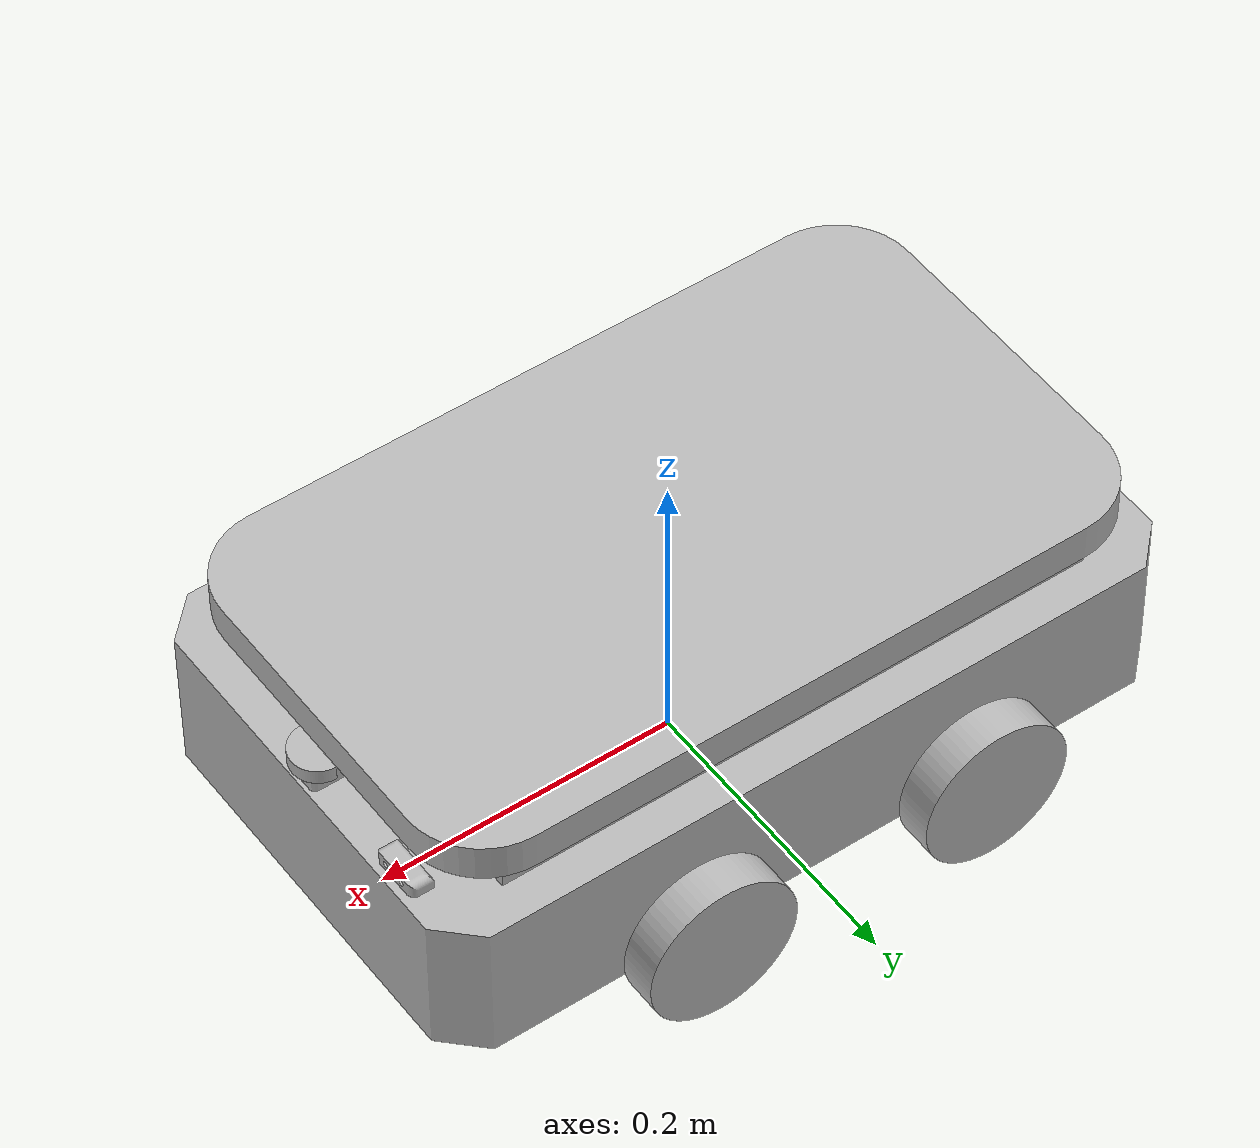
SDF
<?xml version="1.0" ?>
<sdf version="1.9">
<world name="default">
        <physics name="1ms" type="ignored">
            <max_step_size>0.001</max_step_size>
            <real_time_factor>1.0</real_time_factor>
        </physics>
        <plugin
            filename="gz-sim-physics-system"
            name="gz::sim::systems::Physics">
        </plugin>
        <plugin
            filename="gz-sim-user-commands-system"
            name="gz::sim::systems::UserCommands">
        </plugin>
        <plugin
            filename="gz-sim-scene-broadcaster-system"
            name="gz::sim::systems::SceneBroadcaster">
        </plugin>
        <plugin filename="gz-sim-imu-system"
              name="gz::sim::systems::Imu">
        </plugin>

        <plugin
          filename="gz-sim-sensors-system"
          name="gz::sim::systems::Sensors">
          <render_engine>ogre2</render_engine>
        </plugin>

        <light type="directional" name="sun">
            <cast_shadows>true</cast_shadows>
            <pose>0 0 10 0 0 0</pose>
            <diffuse>0.8 0.8 0.8 1</diffuse>
            <specular>0.2 0.2 0.2 1</specular>
            <attenuation>
                <range>1000</range>
                <constant>0.9</constant>
                <linear>0.01</linear>
                <quadratic>0.001</quadratic>
            </attenuation>
            <direction>-0.5 0.1 -0.9</direction>
        </light>

  <model name="rusty_v1">
    <link name="base_link">
      <inertial>
        <mass>0.0001</mass>
        <inertia>
          <ixx>1e-09</ixx>
          <ixy>0</ixy>
          <ixz>0</ixz>
          <iyy>1e-09</iyy>
          <iyz>0</iyz>
          <izz>1e-09</izz>
        </inertia>
      </inertial>
      <sensor name="imu_sensor" type="imu">
        <always_on>1</always_on>
        <update_rate>1</update_rate>
        <visualize>true</visualize>
        <topic>imu</topic>
      </sensor>
    </link>
    <link name="base_link_1">
      <pose relative_to="__model__">0.0 0.0 0.025 0.0 -0.0 0.0</pose>
      <inertial>
        <pose>0.0002544970294304579 -2.7411733823236023e-17 0.05841254857000653 0.0 -0.0 0.0</pose>
        <mass>14.333340375312384</mass>
        <inertia>
          <ixx>0.17330689589626652</ixx>
          <ixy>3.770856504009189e-16</ixy>
          <ixz>-0.00017122611970999112</ixz>
          <iyy>0.37322862931138256</iyy>
          <iyz>8.481746606555297e-18</iyz>
          <izz>0.49091749554724184</izz>
        </inertia>
      </inertial>
      <visual name="base_link_1__base_link_visual">
        <geometry>
          <mesh>
            <scale>0.01 0.01 0.01</scale>
            <uri>/home/siddarth/ros2ws/src/Rusty/rusty_common/meshes/base_link_1/base_link_visual.obj</uri>
          </mesh>
        </geometry>
      </visual>
      <collision name="base_link_1__base_link_collision">
        <pose relative_to="__model__">0.0 0.0 0.0875 -0.0 -1.5707963267948966 0</pose>
        <geometry>
          <box>
            <size>0.125 0.34 0.5</size>
          </box>
        </geometry>
      </collision>
    </link>
    <link name="rw1_1">
      <pose relative_to="__model__">-0.048075934676033716 0.16599272944775692 0.035152659990737724 6.938893903907236e-18 -0.0 0.0</pose>
      <inertial>
        <pose>0.1430759346760337 -0.3384927294477569 0.014847340009262286 -6.938893903907236e-18 -0.0 0.0</pose>
        <mass>0.1826050729899068</mass>
        <inertia>
          <ixx>0.00012363885150358436</ixx>
          <ixy>-8.673617379884035e-19</ixy>
          <ixz>-2.168404344971009e-19</ixz>
          <iyy>0.00022825634123738127</iyy>
          <iyz>6.505213034913027e-19</iyz>
          <izz>0.00012363885150358522</izz>
        </inertia>
      </inertial>
      <visual name="rw1_1__rw1_visual">
        <geometry>
          <mesh>
            <scale>0.01 0.01 0.01</scale>
            <uri>/home/siddarth/ros2ws/src/Rusty/rusty_common/meshes/rw1_1/rw1_visual.obj</uri>
          </mesh>
        </geometry>
      </visual>
      <collision name="rw1_1__rw1_collision">
        <pose relative_to="__model__">0.095 -0.1725 0.05 -0.0 -1.5707963267948966 0</pose>
        <geometry>
          <box>
            <size>0.10000000000000003 0.025 0.10000000000000002</size>
          </box>
        </geometry>
      </collision>
    </link>
    <link name="lw1_1">
      <pose relative_to="__model__">-0.0029629661386292127 -0.06704285733682042 0.04257306317273629 0.0 -0.0 0.0</pose>
      <inertial>
        <pose>0.09796296613862925 0.23954285733682046 0.007426936827263732 0.0 -0.0 0.0</pose>
        <mass>0.1826050729899069</mass>
        <inertia>
          <ixx>0.00012363885150357915</ixx>
          <ixy>8.673617379884035e-19</ixy>
          <ixz>2.927345865710862e-18</ixz>
          <iyy>0.00022825634123738083</iyy>
          <iyz>2.168404344971009e-19</iyz>
          <izz>0.00012363885150358002</izz>
        </inertia>
      </inertial>
      <visual name="lw1_1__lw1_visual">
        <geometry>
          <mesh>
            <scale>0.01 0.01 0.01</scale>
            <uri>/home/siddarth/ros2ws/src/Rusty/rusty_common/meshes/lw1_1/lw1_visual.obj</uri>
          </mesh>
        </geometry>
      </visual>
      <collision name="lw1_1__lw1_collision">
        <pose relative_to="__model__">0.095 0.1725 0.05000000000000001 -0.0 -1.5707963267948966 0</pose>
        <geometry>
          <box>
            <size>0.10000000000000005 0.025 0.10000000000000003</size>
          </box>
        </geometry>
      </collision>
    </link>
    <link name="rw2_1">
      <pose relative_to="__model__">0.05430130702462311 0.165 0.0004577485078454657 0.0 -0.0 0.0</pose>
      <inertial>
        <pose>-0.1493013070246231 -0.3375 0.049542251492154535 0.0 -0.0 0.0</pose>
        <mass>0.18260507298990683</mass>
        <inertia>
          <ixx>0.00012363885150357828</ixx>
          <ixy>-3.903127820947816e-18</ixy>
          <ixz>3.2526065174565133e-19</ixz>
          <iyy>0.00022825634123738083</iyy>
          <iyz>2.168404344971009e-19</iyz>
          <izz>0.00012363885150358436</izz>
        </inertia>
      </inertial>
      <visual name="rw2_1__rw2_visual">
        <geometry>
          <mesh>
            <scale>0.01 0.01 0.01</scale>
            <uri>/home/siddarth/ros2ws/src/Rusty/rusty_common/meshes/rw2_1/rw2_visual.obj</uri>
          </mesh>
        </geometry>
      </visual>
      <collision name="rw2_1__rw2_collision">
        <pose relative_to="__model__">-0.095 -0.1725 0.05 -0.0 -1.5707963267948966 0</pose>
        <geometry>
          <box>
            <size>0.10000000000000003 0.025 0.10000000000000005</size>
          </box>
        </geometry>
      </collision>
    </link>
    <link name="lw2_1">
      <pose relative_to="__model__">0.06544107043140138 -0.18624680235844282 -0.0338269179372204 2.7755575615628914e-17 -0.0 0.0</pose>
      <inertial>
        <pose>-0.16044107043140138 0.35874680235844275 0.08382691793722039 -2.7755575615628914e-17 -0.0 0.0</pose>
        <mass>0.18260507298990683</mass>
        <inertia>
          <ixx>0.00012363885150358956</ixx>
          <ixy>1.3010426069826053e-18</ixy>
          <ixz>-3.2526065174565133e-19</ixz>
          <iyy>0.00022825634123737823</iyy>
          <iyz>-6.505213034913027e-19</iyz>
          <izz>0.00012363885150358696</izz>
        </inertia>
      </inertial>
      <visual name="lw2_1__lw2_visual">
        <geometry>
          <mesh>
            <scale>0.01 0.01 0.01</scale>
            <uri>/home/siddarth/ros2ws/src/Rusty/rusty_common/meshes/lw2_1/lw2_visual.obj</uri>
          </mesh>
        </geometry>
      </visual>
      <collision name="lw2_1__lw2_collision">
        <pose relative_to="__model__">-0.095 0.1725 0.04999999999999999 -0.0 -1.5707963267948966 0</pose>
        <geometry>
          <box>
            <size>0.10000000000000003 0.025 0.1</size>
          </box>
        </geometry>
      </collision>
    </link>
    <link name="holder_1">
      <pose relative_to="__model__">0.0 0.0 -0.175 0.0 -0.0 0.0</pose>
      <inertial>
        <pose>-4.445233212745621e-17 0.0 0.3375 0.0 -0.0 0.0</pose>
        <mass>25.69775961700859</mass>
        <inertia>
          <ixx>0.16588185166989988</ixx>
          <ixy>0.0</ixy>
          <ixz>-5.45460352441296e-16</ixz>
          <iyy>0.46879960924575326</iyy>
          <iyz>6.282789399847388e-17</iyz>
          <izz>0.6320046109555476</izz>
        </inertia>
      </inertial>
      <visual name="holder_1__holder_visual">
        <geometry>
          <mesh>
            <scale>0.01 0.01 0.01</scale>
            <uri>/home/siddarth/ros2ws/src/Rusty/rusty_common/meshes/holder_1/holder_visual.obj</uri>
          </mesh>
        </geometry>
      </visual>
      <collision name="holder_1__holder_collision">
        <pose relative_to="__model__">0.0 0.0 0.1625 -0.0 -1.5707963267948966 0</pose>
        <geometry>
          <box>
            <size>0.025 0.28079487118715435 0.4739759520955434</size>
          </box>
        </geometry>
      </collision>
    </link>
    <link name="lidar_1">
      <pose relative_to="__model__">-0.1750000035017729 0.0 0.025 0.0 -0.0 0.0</pose>
      <inertial>
        <pose>0.41740216277899855 -0.00023091322011423596 0.11500000000000002 0.0 -0.0 0.0</pose>
        <mass>0.008257286244679606</mass>
        <inertia>
          <ixx>7.354661799746133e-07</ixx>
          <ixy>-1.4907316082660063e-08</ixy>
          <ixz>0.0</ixz>
          <iyy>2.580619663073531e-07</iyy>
          <iyz>2.117582368135751e-21</iyz>
          <izz>8.559067088706549e-07</izz>
        </inertia>
      </inertial>
      <visual name="lidar_1__lidar_visual">
        <geometry>
          <mesh>
            <scale>0.01 0.01 0.01</scale>
            <uri>/home/siddarth/ros2ws/src/Rusty/rusty_common/meshes/lidar_1/lidar_visual.obj</uri>
          </mesh>
        </geometry>
      </visual>
      <collision name="lidar_1__lidar_collision">
        <pose relative_to="__model__">0.2436204795744473 -0.0002689191593257145 0.139999999999608 0.031185268471219173 -1.5707963267948966 0</pose>
        <geometry>
          <box>
            <size>0.01 0.035608988160144975 0.018359642015575127</size>
          </box>
        </geometry>
      </collision>
      <sensor name='lidar' type='gpu_lidar'>"

        <topic>lidar</topic>
        <update_rate>10</update_rate>
        <ray>
            <scan>
                <horizontal>
                    <samples>640</samples>
                    <resolution>1</resolution>
                    <min_angle>-1.396263</min_angle>
                    <max_angle>1.396263</max_angle>
                </horizontal>
                <vertical>
                    <samples>1</samples>
                    <resolution>0.01</resolution>
                    <min_angle>0</min_angle>
                    <max_angle>0</max_angle>
                </vertical>
            </scan>
            <range>
                <min>0.08</min>
                <max>10.0</max>
                <resolution>0.01</resolution>
            </range>
        </ray>
        <always_on>1</always_on>
        <visualize>true</visualize>
      </sensor>
    </link>
    <link name="camera_1">
      <pose relative_to="__model__">0.005088479046599446 0.004599132655587397 0.0 0.0 -0.0 6.123233995736766e-17</pose>
      <inertial>
        <pose>0.23253901869823768 0.08250000000000439 0.12975699657340425 0.0 -0.0 -6.123233995736766e-17</pose>
        <mass>0.007791207915918992</mass>
        <inertia>
          <ixx>8.006957045842116e-07</ixx>
          <ixy>-2.168404344971009e-19</ixy>
          <ixz>-7.3239294176065135e-09</ixz>
          <iyy>1.9602796104574698e-07</iyy>
          <iyz>0.0</iyz>
          <izz>8.739575596594705e-07</izz>
        </inertia>
      </inertial>
      <visual name="camera_1__body1_visual">
        <geometry>
          <mesh>
            <scale>0.01 0.01 0.01</scale>
            <uri>/home/siddarth/ros2ws/src/Rusty/rusty_common/meshes/camera_1/body1_visual.obj</uri>
          </mesh>
        </geometry>
      </visual>
      <collision name="camera_1__body1_collision">
        <pose relative_to="__model__">0.23758847904659944 0.08709913265558741 0.13 -0.0 -1.5707963267948966 0</pose>
        <geometry>
          <box>
            <size>0.01 0.035 0.015</size>
          </box>
        </geometry>
      </collision>

      <!-- Camera Sensor -->
      <sensor name="camera" type="camera">
          <camera>
            <horizontal_fov>1.047</horizontal_fov>
            <image>
              <width>320</width>
              <height>240</height>
            </image>
            <clip>
              <near>0.1</near>
              <far>100</far>
            </clip>
          </camera>
          <always_on>1</always_on>
          <update_rate>30</update_rate>
          <visualize>true</visualize>
          <topic>image</topic>
      </sensor>
      <sensor name="depth_camera1" type="depth_camera">

          <update_rate>10</update_rate>
          <topic>depth</topic>
          <camera>
            <horizontal_fov>1.05</horizontal_fov>
            <image>
              <width>256</width>
              <height>256</height>
              <format>R_FLOAT32</format>
            </image>
            <clip>
              <near>0.1</near>
              <far>10.0</far>
            </clip>
          </camera>
        </sensor>
    </link>
    <joint name="rw2" type="continuous">
      <pose relative_to="__model__">-0.095 -0.16 0.05 0.0 -0.0 0.0</pose>
      <parent>base_link_1</parent>
      <child>rw2_1</child>
      <axis>
        <xyz expressed_in="__model__">0.0 -1.0 0.0</xyz>
      </axis>
    </joint>
    <joint name="rw1" type="continuous">
      <pose relative_to="__model__">0.095 -0.16 0.05 0.0 -0.0 0.0</pose>
      <parent>base_link_1</parent>
      <child>rw1_1</child>
      <axis>
        <xyz expressed_in="__model__">0.0 1.0 0.0</xyz>
      </axis>
    </joint>
    <joint name="lw2" type="continuous">
      <pose relative_to="__model__">-0.095 0.16 0.05000000000000002 0.0 -0.0 0.0</pose>
      <parent>base_link_1</parent>
      <child>lw2_1</child>
      <axis>
        <xyz expressed_in="__model__">0.0 -1.0 0.0</xyz>
      </axis>
    </joint>
    <joint name="lw1" type="continuous">
      <pose relative_to="__model__">0.09500000000000001 0.16 0.05000000000000002 0.0 -0.0 0.0</pose>
      <parent>base_link_1</parent>
      <child>lw1_1</child>
      <axis>
        <xyz expressed_in="__model__">0.0 1.0 0.0</xyz>
      </axis>
    </joint>
    <joint name="rigid_10" type="fixed">
      <pose relative_to="__model__">0.0 0.0 0.15 0.0 -0.0 0.0</pose>
      <parent>base_link_1</parent>
      <child>holder_1</child>
      <axis/>
    </joint>
    <joint name="lidar" type="fixed">
      <pose relative_to="__model__">0.235 0.0 0.135 0.0 -0.0 0.0</pose>
      <parent>base_link_1</parent>
      <child>lidar_1</child>
      <axis/>
    </joint>
    <joint name="camera" type="fixed">
      <pose relative_to="__model__">0.23758847904659944 0.08709913265558741 0.125 0.0 -0.0 0.0</pose>
      <parent>base_link_1</parent>
      <child>camera_1</child>
      <axis/>
    </joint>
    <joint name="base_link_joint" type="fixed">
      <parent>base_link</parent>
      <child>base_link_1</child>
      <axis/>
    </joint>

    <plugin
       filename="ignition-gazebo-diff-drive-system"
      name="ignition::gazebo::systems::DiffDrive">
      <left_joint>lw1</left_joint>
     <left_joint>lw2</left_joint>
     <right_joint>rw1</right_joint>
     <right_joint>rw2</right_joint>
     <wheel_separation>1.25</wheel_separation>
     <wheel_radius>0.3</wheel_radius>
     <odom_publish_frequency>1</odom_publish_frequency>
     <max_linear_acceleration>1</max_linear_acceleration>
     <min_linear_acceleration>-1</min_linear_acceleration>
     <max_angular_acceleration>2</max_angular_acceleration>
     <min_angular_acceleration>-2</min_angular_acceleration>
     <max_linear_velocity>0.5</max_linear_velocity>
     <min_linear_velocity>-0.5</min_linear_velocity>
     <max_angular_velocity>1</max_angular_velocity>
     <topic>cmd_vel</topic>

      </plugin>

  </model>
</world>
</sdf>
